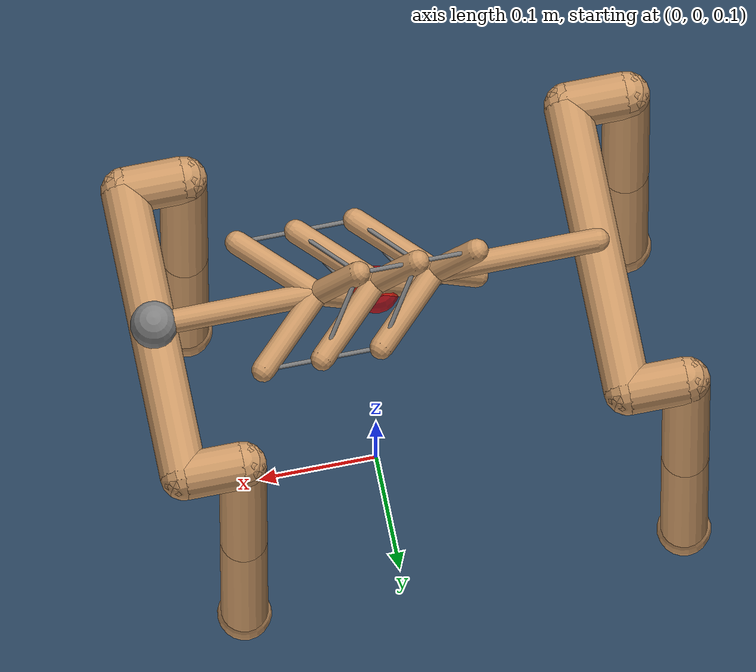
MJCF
<mujoco model="unnamed_model">
  <compiler angle="radian"/>
  <option timestep="0.002" integrator="implicitfast" iterations="100" ls_iterations="50"/>
  <default>
    <default class="/">
      <default class="tq1">
        <joint type="hinge" limited="true" armature="0.0050000000000000001" damping="0.5" frictionloss="0.001"/>
        <geom contype="1" conaffinity="0" condim="3"/>
        <position ctrlrange="-2.3559999999999999 2.3559999999999999" forcerange="-50 50" kp="50"/>
        <default class="vertebra_geom">
          <geom type="capsule" group="0" size="0.01" rgba="0.80000000000000004 0.59999999999999998 0.40000000000000002 1" density="1750"/>
        </default>
        <default class="leg_geom">
          <geom type="capsule" conaffinity="0" group="1" size="0.02" rgba="0.80000000000000004 0.59999999999999998 0.40000000000000002 1" density="1750"/>
        </default>
        <default class="lateral_tendon">
          <tendon frictionloss="0.02" width="0.002" rgba="1 0 0 0.5" stiffness="7000" damping="5"/>
        </default>
        <default class="diagonal_tendon">
          <tendon frictionloss="0.02" width="0.002" rgba="0 0 1 0.5" stiffness="10000" damping="5"/>
        </default>
        <default class="lateral_top">
          <tendon frictionloss="0.02" width="0.002" stiffness="3000" damping="5"/>
        </default>
        <default class="lateral_bottom">
          <tendon frictionloss="0.02" width="0.002" stiffness="3000" damping="5"/>
        </default>
        <default class="lateral_left">
          <tendon frictionloss="0.02" width="0.002" stiffness="10000" damping="5"/>
        </default>
        <default class="lateral_right">
          <tendon frictionloss="0.02" width="0.002" stiffness="10000" damping="5"/>
        </default>
        <default class="diag_a1b1">
          <tendon frictionloss="0.02" width="0.002" stiffness="10000" damping="5"/>
        </default>
        <default class="diag_a2b2">
          <tendon frictionloss="0.02" width="0.002" stiffness="10000" damping="5"/>
        </default>
        <default class="diag_a1b2">
          <tendon frictionloss="0.02" width="0.002" stiffness="10000" damping="5"/>
        </default>
        <default class="diag_a2b1">
          <tendon frictionloss="0.02" width="0.002" stiffness="10000" damping="5"/>
        </default>
      </default>
    </default>
  </default>
  <asset>
    <texture name="skybox" type="skybox" builtin="gradient" rgb1="0.40000000000000002 0.59999999999999998 0.80000000000000004" rgb2="0 0 0" mark="random" markrgb="1 1 1" width="800" height="800"/>
    <texture name="grid" type="2d" builtin="checker" rgb1="0.10000000000000001 0.20000000000000001 0.29999999999999999" rgb2="0.20000000000000001 0.29999999999999999 0.40000000000000002" mark="edge" markrgb="0.20000000000000001 0.29999999999999999 0.40000000000000002" width="300" height="300"/>
    <material name="grid" class="/" texture="grid" texrepeat="5 5" texuniform="true" reflectance="0.20000000000000001"/>
  </asset>
  <worldbody>
    <geom name="floor" class="/" type="plane" size="50 50 0.10000000000000001" material="grid" pos="0 0 0"/>
    <body name="vertebrae_0" childclass="tq1" pos="0.050000000000000003 0 0.59999999999999998">
      <light name="tracking" mode="trackcom" pos="0 0 3" diffuse="0.59999999999999998 0.59999999999999998 0.59999999999999998"/>
      <camera name="track" mode="trackcom" pos="0.84599999999999997 -1.3 0.316" xyaxes="0.86599999999999999 0.5 0 -0.17100000000000001 0.29599999999999999 0.93999999999999995"/>
      <camera name="top" mode="trackcom" pos="-1 0 1" xyaxes="0 -1 0 0.69999999999999996 0 0.69999999999999996"/>
      <camera name="side" mode="trackcom" pos="0 -1 0.29999999999999999" xyaxes="1 0 0 0 1 2"/>
      <camera name="back" mode="trackcom" pos="-1 0 0.29999999999999999" xyaxes="0 -1 0 1 0 2"/>
      <camera name="overview" mode="trackcom" fovy="70" pos="-1 0 2" xyaxes="0 -1 0 0.5 0 0.5"/>
      <joint name="joint_vertebrae_0" type="free"/>
      <site name="com_vertebrae_1" size="0.02" pos="0.1381 0 0"/>
      <geom name="vertebrae_0_a1_geom" class="vertebra_geom" fromto="0 0 0 -0.035355339059327383 0 0.035355339059327376"/>
      <site name="vertebrae_0_a1" size="0.0050000000000000001" pos="-0.035355339059327383 0 0.035355339059327376"/>
      <geom name="vertebrae_0_a2_geom" class="vertebra_geom" fromto="0 0 0 -0.035355339059327383 0 -0.035355339059327376"/>
      <site name="vertebrae_0_a2" size="0.0050000000000000001" pos="-0.035355339059327383 0 -0.035355339059327376"/>
      <geom name="vertebrae_0_b1_geom" class="vertebra_geom" fromto="0 0 0 0.05656854249492381 0.056568542494923796 0"/>
      <site name="vertebrae_0_b1" size="0.0050000000000000001" pos="0.05656854249492381 0.056568542494923796 0"/>
      <geom name="vertebrae_0_b2_geom" class="vertebra_geom" fromto="0 0 0 0.05656854249492381 -0.056568542494923796 0"/>
      <site name="vertebrae_0_b2" size="0.0050000000000000001" pos="0.05656854249492381 -0.056568542494923796 0"/>
      <geom name="front_spacer" class="vertebra_geom" type="capsule" fromto="0 0 0 0.1381 0 0"/>
      <geom name="hind_shoulder" class="leg_geom" fromto="0.1381 -0.12675 -0.025000000000000001 0.1381 0.12675 -0.025000000000000001"/>
      <geom name="hind_shoulder_attach" class="leg_geom" size="0.0050000000000000001" fromto="0.1381 0 0 0.1381 0 -0.025000000000000001"/>
      <body name="fr_leg" pos="0.1381 -0.12675 -0.025000000000000001">
        <joint name="fr_hip_roll" axis="1 0 0" range="0 9.9999999999999995e-21" frictionloss="0.29999999999999999"/>
        <geom name="fr_hip_roll_geom" class="leg_geom" fromto="0 0 0 -0.050000000000000003 0 0"/>
        <body name="fr_hip_pitch" pos="-0.050000000000000003 0 0">
          <joint name="fr_hip_pitch" axis="0 1 0" range="-0.68600000000000005 4.5010000000000003" frictionloss="0.29999999999999999"/>
          <geom name="fr_hip_pitch_geom" class="leg_geom" fromto="0 0 0 0 0 -0.21299999999999999"/>
          <body name="fr_knee" pos="0 0 -0.21299999999999999">
            <joint name="fr_knee" axis="0 1 0" range="-2.8180000000000001 -0.88800000000000001" frictionloss="1"/>
            <geom name="fr_shin_geom" class="leg_geom" conaffinity="0" fromto="0 0 0 0 0 -0.21299999999999999"/>
            <body name="fr_foot" pos="0 0 -0.21299999999999999">
              <geom name="fr_foot_geom" class="leg_geom" type="sphere" contype="1" conaffinity="1" size="0.023" friction="0.80000000000000004 0.02 0.01"/>
              <site name="fr_foot_site" size="0.023" pos="0 0 0"/>
            </body>
          </body>
        </body>
      </body>
      <body name="fl_leg" pos="0.1381 0.12675 -0.025000000000000001">
        <joint name="fl_hip_roll" axis="1 0 0" range="0 9.9999999999999995e-21" frictionloss="0.29999999999999999"/>
        <geom name="fl_hip_roll_geom" class="leg_geom" fromto="0 0 0 -0.050000000000000003 0 0"/>
        <body name="fl_hip_pitch" pos="-0.050000000000000003 0 0">
          <joint name="fl_hip_pitch" axis="0 1 0" range="-0.68600000000000005 4.5010000000000003" frictionloss="0.29999999999999999"/>
          <geom name="fl_hip_pitch_geom" class="leg_geom" fromto="0 0 0 0 0 -0.21299999999999999"/>
          <body name="fl_knee" pos="0 0 -0.21299999999999999">
            <joint name="fl_knee" axis="0 1 0" range="-2.8180000000000001 -0.88800000000000001" frictionloss="1"/>
            <geom name="fl_shin_geom" class="leg_geom" conaffinity="0" fromto="0 0 0 0 0 -0.21299999999999999"/>
            <body name="fl_foot" pos="0 0 -0.21299999999999999">
              <geom name="fl_foot_geom" class="leg_geom" type="sphere" contype="1" conaffinity="1" size="0.023" friction="0.80000000000000004 0.02 0.01"/>
              <site name="fl_foot_site" size="0.023" pos="0 0 0"/>
            </body>
          </body>
        </body>
      </body>
    </body>
    <body name="vertebrae_1" childclass="tq1" pos="0 0 0.59999999999999998">
      <joint name="joint_vertebrae_1" type="free"/>
      <geom name="vertebrae_1_a1_geom" class="vertebra_geom" fromto="0 0 0 -0.035355339059327383 0 0.035355339059327376"/>
      <site name="vertebrae_1_a1" size="0.0050000000000000001" pos="-0.035355339059327383 0 0.035355339059327376"/>
      <geom name="vertebrae_1_a2_geom" class="vertebra_geom" fromto="0 0 0 -0.035355339059327383 0 -0.035355339059327376"/>
      <site name="vertebrae_1_a2" size="0.0050000000000000001" pos="-0.035355339059327383 0 -0.035355339059327376"/>
      <geom name="vertebrae_1_b1_geom" class="vertebra_geom" fromto="0 0 0 0.05656854249492381 0.056568542494923796 0"/>
      <site name="vertebrae_1_b1" size="0.0050000000000000001" pos="0.05656854249492381 0.056568542494923796 0"/>
      <geom name="vertebrae_1_b2_geom" class="vertebra_geom" fromto="0 0 0 0.05656854249492381 -0.056568542494923796 0"/>
      <site name="vertebrae_1_b2" size="0.0050000000000000001" pos="0.05656854249492381 -0.056568542494923796 0"/>
    </body>
    <body name="vertebrae_2" childclass="tq1" pos="-0.050000000000000003 0 0.59999999999999998">
      <joint name="joint_vertebrae_2" type="free"/>
      <geom name="vertebrae_2_a1_geom" class="vertebra_geom" fromto="0 0 0 -0.035355339059327383 0 0.035355339059327376"/>
      <site name="vertebrae_2_a1" size="0.0050000000000000001" pos="-0.035355339059327383 0 0.035355339059327376"/>
      <geom name="vertebrae_2_a2_geom" class="vertebra_geom" fromto="0 0 0 -0.035355339059327383 0 -0.035355339059327376"/>
      <site name="vertebrae_2_a2" size="0.0050000000000000001" pos="-0.035355339059327383 0 -0.035355339059327376"/>
      <geom name="vertebrae_2_b1_geom" class="vertebra_geom" fromto="0 0 0 0.05656854249492381 0.056568542494923796 0"/>
      <site name="vertebrae_2_b1" size="0.0050000000000000001" pos="0.05656854249492381 0.056568542494923796 0"/>
      <geom name="vertebrae_2_b2_geom" class="vertebra_geom" fromto="0 0 0 0.05656854249492381 -0.056568542494923796 0"/>
      <site name="vertebrae_2_b2" size="0.0050000000000000001" pos="0.05656854249492381 -0.056568542494923796 0"/>
      <geom name="rear_spacer" class="vertebra_geom" type="capsule" fromto="0 0 0 -0.1381 0 0"/>
      <geom name="front_shoulder" class="leg_geom" fromto="-0.1381 -0.12675 -0.025000000000000001 -0.1381 0.12675 -0.025000000000000001"/>
      <geom name="front_shoulder_attach" class="leg_geom" size="0.0050000000000000001" fromto="-0.1381 0 0 -0.1381 0 -0.025000000000000001"/>
      <body name="rr_leg" pos="-0.1381 -0.12675 -0.025000000000000001">
        <joint name="rr_hip_roll" axis="1 0 0" range="0 9.9999999999999995e-21" frictionloss="0.29999999999999999"/>
        <geom name="rr_hip_roll_geom" class="leg_geom" fromto="0 0 0 -0.050000000000000003 0 0"/>
        <body name="rr_hip_pitch" pos="-0.050000000000000003 0 0">
          <joint name="rr_hip_pitch" axis="0 1 0" range="-0.68600000000000005 4.5010000000000003" frictionloss="0.29999999999999999"/>
          <geom name="rr_hip_pitch_geom" class="leg_geom" fromto="0 0 0 0 0 -0.21299999999999999"/>
          <body name="rr_knee" pos="0 0 -0.21299999999999999">
            <joint name="rr_knee" axis="0 1 0" range="-2.8180000000000001 -0.88800000000000001" frictionloss="1"/>
            <geom name="rr_shin_geom" class="leg_geom" conaffinity="0" fromto="0 0 0 0 0 -0.21299999999999999"/>
            <body name="rr_foot" pos="0 0 -0.21299999999999999">
              <geom name="rr_foot_geom" class="leg_geom" type="sphere" contype="1" conaffinity="1" size="0.023" friction="0.80000000000000004 0.02 0.01"/>
              <site name="rr_foot_site" size="0.023" pos="0 0 0"/>
            </body>
          </body>
        </body>
      </body>
      <body name="rl_leg" pos="-0.1381 0.12675 -0.025000000000000001">
        <joint name="rl_hip_roll" axis="1 0 0" range="0 9.9999999999999995e-21" frictionloss="0.29999999999999999"/>
        <geom name="rl_hip_roll_geom" class="leg_geom" fromto="0 0 0 -0.050000000000000003 0 0"/>
        <body name="rl_hip_pitch" pos="-0.050000000000000003 0 0">
          <joint name="rl_hip_pitch" axis="0 1 0" range="-0.68600000000000005 4.5010000000000003" frictionloss="0.29999999999999999"/>
          <geom name="rl_hip_pitch_geom" class="leg_geom" fromto="0 0 0 0 0 -0.21299999999999999"/>
          <body name="rl_knee" pos="0 0 -0.21299999999999999">
            <joint name="rl_knee" axis="0 1 0" range="-2.8180000000000001 -0.88800000000000001" frictionloss="1"/>
            <geom name="rl_shin_geom" class="leg_geom" conaffinity="0" fromto="0 0 0 0 0 -0.21299999999999999"/>
            <body name="rl_foot" pos="0 0 -0.21299999999999999">
              <geom name="rl_foot_geom" class="leg_geom" type="sphere" contype="1" conaffinity="1" size="0.023" friction="0.80000000000000004 0.02 0.01"/>
              <site name="rl_foot_site" size="0.023" pos="0 0 0"/>
            </body>
          </body>
        </body>
      </body>
    </body>
    <site name="target_marker0" class="/" type="sphere" rgba="1 0 0 0.69999999999999996" size="0.02" pos="0 0 0.57999999999999996"/>
    <site name="target_marker1" class="/" type="sphere" rgba="1 0 0 0.69999999999999996" size="0.02" pos="5 0 0.29999999999999999"/>
    <site name="target_marker2" class="/" type="sphere" rgba="1 0 0 0.69999999999999996" size="0.02" pos="10 0 0.29999999999999999"/>
    <site name="target_marker3" class="/" type="sphere" rgba="1 0 0 0.69999999999999996" size="0.02" pos="15 0 0.29999999999999999"/>
    <site name="target_marker4" class="/" type="sphere" rgba="1 0 0 0.69999999999999996" size="0.02" pos="20 0 0.29999999999999999"/>
    <site name="target_marker5" class="/" type="sphere" rgba="1 0 0 0.69999999999999996" size="0.02" pos="25 0 0.29999999999999999"/>
    <site name="target_marker6" class="/" type="sphere" rgba="1 0 0 0.69999999999999996" size="0.02" pos="30 0 0.29999999999999999"/>
    <site name="target_marker7" class="/" type="sphere" rgba="1 0 0 0.69999999999999996" size="0.02" pos="35 0 0.29999999999999999"/>
    <site name="target_marker8" class="/" type="sphere" rgba="1 0 0 0.69999999999999996" size="0.02" pos="40 0 0.29999999999999999"/>
  </worldbody>
  <tendon>
    <spatial name="lat_a1_0" class="lateral_top" springlength="0.045000000000000005">
      <site site="vertebrae_0_a1"/>
      <site site="vertebrae_1_a1"/>
    </spatial>
    <spatial name="lat_a2_0" class="lateral_bottom" springlength="0.045000000000000005">
      <site site="vertebrae_0_a2"/>
      <site site="vertebrae_1_a2"/>
    </spatial>
    <spatial name="lat_b1_0" class="lateral_left" springlength="0.045000000000000005">
      <site site="vertebrae_0_b1"/>
      <site site="vertebrae_1_b1"/>
    </spatial>
    <spatial name="lat_b2_0" class="lateral_right" springlength="0.045000000000000005">
      <site site="vertebrae_0_b2"/>
      <site site="vertebrae_1_b2"/>
    </spatial>
    <spatial name="diag_a1b1_0" class="diag_a1b1" springlength="0.070909559257589933">
      <site site="vertebrae_0_a1"/>
      <site site="vertebrae_1_b1"/>
    </spatial>
    <spatial name="diag_a2b2_0" class="diag_a2b2" springlength="0.070909559257589933">
      <site site="vertebrae_0_a2"/>
      <site site="vertebrae_1_b2"/>
    </spatial>
    <spatial name="diag_a1b2_0" class="diag_a1b2" springlength="0.070909559257589933">
      <site site="vertebrae_0_a1"/>
      <site site="vertebrae_1_b2"/>
    </spatial>
    <spatial name="diag_a2b1_0" class="diag_a2b1" springlength="0.070909559257589933">
      <site site="vertebrae_0_a2"/>
      <site site="vertebrae_1_b1"/>
    </spatial>
    <spatial name="lat_a1_1" class="lateral_top" springlength="0.044999999999999998">
      <site site="vertebrae_1_a1"/>
      <site site="vertebrae_2_a1"/>
    </spatial>
    <spatial name="lat_a2_1" class="lateral_bottom" springlength="0.044999999999999998">
      <site site="vertebrae_1_a2"/>
      <site site="vertebrae_2_a2"/>
    </spatial>
    <spatial name="lat_b1_1" class="lateral_left" springlength="0.045000000000000005">
      <site site="vertebrae_1_b1"/>
      <site site="vertebrae_2_b1"/>
    </spatial>
    <spatial name="lat_b2_1" class="lateral_right" springlength="0.045000000000000005">
      <site site="vertebrae_1_b2"/>
      <site site="vertebrae_2_b2"/>
    </spatial>
    <spatial name="diag_a1b1_1" class="diag_a1b1" springlength="0.070909559257589933">
      <site site="vertebrae_1_a1"/>
      <site site="vertebrae_2_b1"/>
    </spatial>
    <spatial name="diag_a2b2_1" class="diag_a2b2" springlength="0.070909559257589933">
      <site site="vertebrae_1_a2"/>
      <site site="vertebrae_2_b2"/>
    </spatial>
    <spatial name="diag_a1b2_1" class="diag_a1b2" springlength="0.070909559257589933">
      <site site="vertebrae_1_a1"/>
      <site site="vertebrae_2_b2"/>
    </spatial>
    <spatial name="diag_a2b1_1" class="diag_a2b1" springlength="0.070909559257589933">
      <site site="vertebrae_1_a2"/>
      <site site="vertebrae_2_b1"/>
    </spatial>
  </tendon>
  <actuator>
    <position name="fr_hip_roll" class="/" ctrlrange="0 9.9999999999999995e-21" forcerange="0 0" joint="fr_hip_roll"/>
    <position name="fr_hip_pitch" class="/" ctrlrange="-0.68600000000000005 4.5010000000000003" forcerange="-7.1099999999999994 7.1099999999999994" joint="fr_hip_pitch"/>
    <position name="fr_knee" class="/" ctrlrange="-2.8180000000000001 -0.88800000000000001" forcerange="-10.664999999999999 10.664999999999999" joint="fr_knee"/>
    <position name="fl_hip_roll" class="/" ctrlrange="0 9.9999999999999995e-21" forcerange="0 0" joint="fl_hip_roll"/>
    <position name="fl_hip_pitch" class="/" ctrlrange="-0.68600000000000005 4.5010000000000003" forcerange="-7.1099999999999994 7.1099999999999994" joint="fl_hip_pitch"/>
    <position name="fl_knee" class="/" ctrlrange="-2.8180000000000001 -0.88800000000000001" forcerange="-10.664999999999999 10.664999999999999" joint="fl_knee"/>
    <position name="rr_hip_roll" class="/" ctrlrange="0 9.9999999999999995e-21" forcerange="0 0" joint="rr_hip_roll"/>
    <position name="rr_hip_pitch" class="/" ctrlrange="-0.68600000000000005 4.5010000000000003" forcerange="-7.1099999999999994 7.1099999999999994" joint="rr_hip_pitch"/>
    <position name="rr_knee" class="/" ctrlrange="-2.8180000000000001 -0.88800000000000001" forcerange="-10.664999999999999 10.664999999999999" joint="rr_knee"/>
    <position name="rl_hip_roll" class="/" ctrlrange="0 9.9999999999999995e-21" forcerange="0 0" joint="rl_hip_roll"/>
    <position name="rl_hip_pitch" class="/" ctrlrange="-0.68600000000000005 4.5010000000000003" forcerange="-7.1099999999999994 7.1099999999999994" joint="rl_hip_pitch"/>
    <position name="rl_knee" class="/" ctrlrange="-2.8180000000000001 -0.88800000000000001" forcerange="-10.664999999999999 10.664999999999999" joint="rl_knee"/>
  </actuator>
  <sensor>
    <jointpos name="fr_hip_roll_pos" joint="fr_hip_roll"/>
    <jointpos name="fr_hip_pitch_pos" joint="fr_hip_pitch"/>
    <jointpos name="fr_knee_pos" joint="fr_knee"/>
    <jointpos name="fl_hip_roll_pos" joint="fl_hip_roll"/>
    <jointpos name="fl_hip_pitch_pos" joint="fl_hip_pitch"/>
    <jointpos name="fl_knee_pos" joint="fl_knee"/>
    <jointpos name="rr_hip_roll_pos" joint="rr_hip_roll"/>
    <jointpos name="rr_hip_pitch_pos" joint="rr_hip_pitch"/>
    <jointpos name="rr_knee_pos" joint="rr_knee"/>
    <jointpos name="rl_hip_roll_pos" joint="rl_hip_roll"/>
    <jointpos name="rl_hip_pitch_pos" joint="rl_hip_pitch"/>
    <jointpos name="rl_knee_pos" joint="rl_knee"/>
    <jointvel name="fr_hip_roll_vel" joint="fr_hip_roll"/>
    <jointvel name="fr_hip_pitch_vel" joint="fr_hip_pitch"/>
    <jointvel name="fr_knee_vel" joint="fr_knee"/>
    <jointvel name="fl_hip_roll_vel" joint="fl_hip_roll"/>
    <jointvel name="fl_hip_pitch_vel" joint="fl_hip_pitch"/>
    <jointvel name="fl_knee_vel" joint="fl_knee"/>
    <jointvel name="rr_hip_roll_vel" joint="rr_hip_roll"/>
    <jointvel name="rr_hip_pitch_vel" joint="rr_hip_pitch"/>
    <jointvel name="rr_knee_vel" joint="rr_knee"/>
    <jointvel name="rl_hip_roll_vel" joint="rl_hip_roll"/>
    <jointvel name="rl_hip_pitch_vel" joint="rl_hip_pitch"/>
    <jointvel name="rl_knee_vel" joint="rl_knee"/>
    <gyro name="gyro" site="com_vertebrae_1"/>
    <velocimeter name="local_linvel" site="com_vertebrae_1"/>
    <accelerometer name="accelerometer" site="com_vertebrae_1"/>
    <framepos name="position" objtype="site" objname="com_vertebrae_1"/>
    <framezaxis name="upvector" objtype="site" objname="com_vertebrae_1"/>
    <framexaxis name="forwardvector" objtype="site" objname="com_vertebrae_1"/>
    <framelinvel name="global_linvel" objtype="site" objname="com_vertebrae_1"/>
    <frameangvel name="global_angvel" objtype="site" objname="com_vertebrae_1"/>
    <framequat name="orientation" objtype="site" objname="com_vertebrae_1"/>
    <framelinvel name="fr_foot_global_linvel" objtype="site" objname="fr_foot_site"/>
    <framelinvel name="fl_foot_global_linvel" objtype="site" objname="fl_foot_site"/>
    <framelinvel name="rr_foot_global_linvel" objtype="site" objname="rr_foot_site"/>
    <framelinvel name="rl_foot_global_linvel" objtype="site" objname="rl_foot_site"/>
    <touch name="fr_foot_touch" site="fr_foot_site"/>
    <touch name="fl_foot_touch" site="fl_foot_site"/>
    <touch name="rr_foot_touch" site="rr_foot_site"/>
    <touch name="rl_foot_touch" site="rl_foot_site"/>
    <force name="fr_foot_force" site="fr_foot_site"/>
    <force name="fl_foot_force" site="fl_foot_site"/>
    <force name="rr_foot_force" site="rr_foot_site"/>
    <force name="rl_foot_force" site="rl_foot_site"/>
  </sensor>
  <keyframe>
    <key name="stable_pose" qpos="0.050000000000000003 0 0.59999999999999998 1 0 0 0 0 0.90000000000000002 -1.55 0 0.90000000000000002 -1.55 0 0 0.59999999999999998 1 0 0 0 -0.050000000000000003 0 0.59999999999999998 1 0 0 0 0 0.90000000000000002 -1.55 0 0.90000000000000002 -1.55" ctrl="0 0.90000000000000002 -1.55 0 0.90000000000000002 -1.55 0 0.90000000000000002 -1.55 0 0.90000000000000002 -1.55"/>
  </keyframe>
</mujoco>
